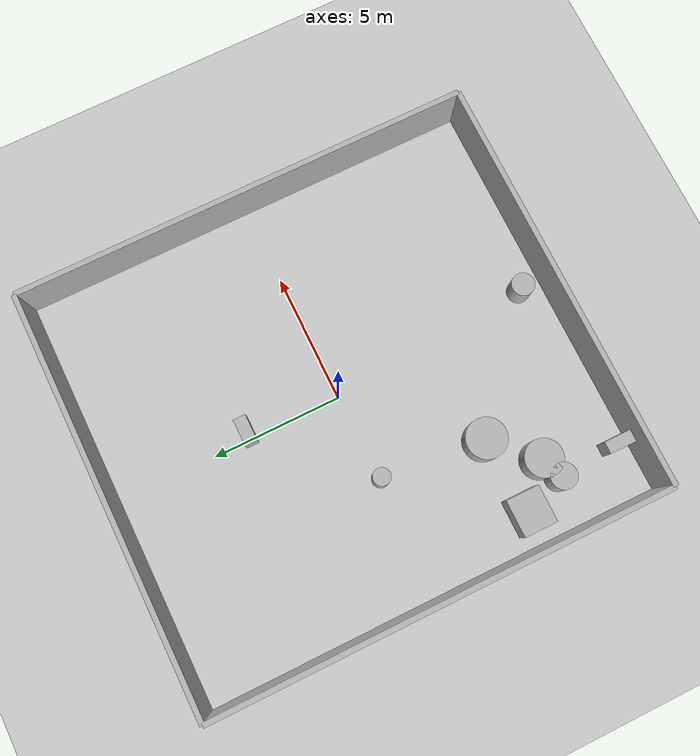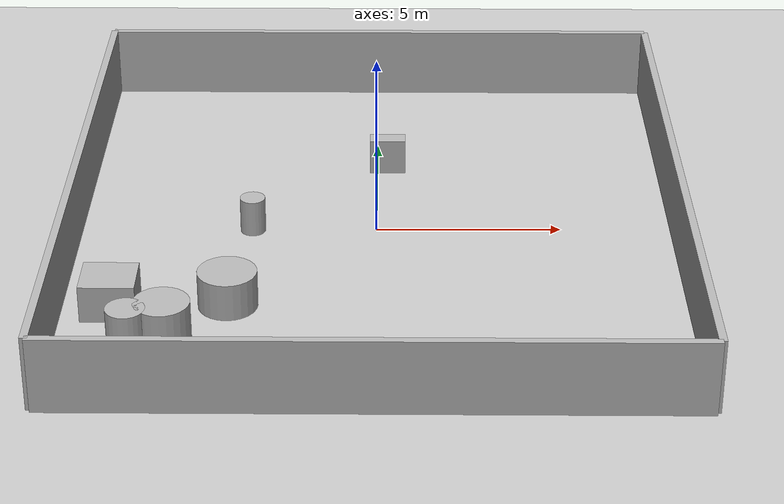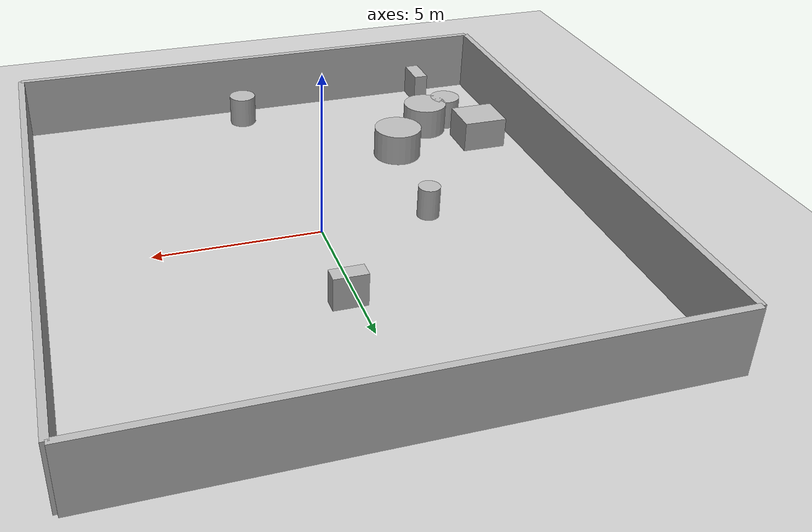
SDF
<?xml version="1.0"?>
<sdf version="1.6">
  <world name="env_27">

    <include><uri>model://ground_plane</uri></include>
    <include><uri>model://sun</uri></include>

    <!-- WALLS -->
    <model name="wall_north"><static>true</static><pose>0 8.845807577676442 1 0 0 0</pose>
      <link name="link"><collision name="collision">
        <geometry><box><size>16.138119352759645 0.2 2</size></box></geometry>
      </collision><visual name="visual">
        <geometry><box><size>16.138119352759645 0.2 2</size></box></geometry>
      </visual></link>
    </model>

    <model name="wall_south"><static>true</static><pose>0 -8.845807577676442 1 0 0 0</pose>
      <link name="link"><collision name="collision">
        <geometry><box><size>16.138119352759645 0.2 2</size></box></geometry>
      </collision><visual name="visual">
        <geometry><box><size>16.138119352759645 0.2 2</size></box></geometry>
      </visual></link>
    </model>

    <model name="wall_east"><static>true</static><pose>8.069059676379823 0 1 0 0 1.57</pose>
      <link name="link"><collision name="collision">
        <geometry><box><size>17.691615155352885 0.2 2</size></box></geometry>
      </collision><visual name="visual">
        <geometry><box><size>17.691615155352885 0.2 2</size></box></geometry>
      </visual></link>
    </model>

    <model name="wall_west"><static>true</static><pose>-8.069059676379823 0 1 0 0 1.57</pose>
      <link name="link"><collision name="collision">
        <geometry><box><size>17.691615155352885 0.2 2</size></box></geometry>
      </collision><visual name="visual">
        <geometry><box><size>17.691615155352885 0.2 2</size></box></geometry>
      </visual></link>
    </model>

    <!-- SENSOR -->

    <model name="lidar_sensor">
      <static>true</static>
      <pose>-6.746635146289049 2.9169019839385584 0.4 0 0 0</pose>
      <link name="link">
        <sensor name="lidar" type="ray">
          <pose>0 0 0 0 0 0</pose>
          <visualize>true</visualize>
          <always_on>true</always_on>
          <update_rate>10</update_rate>
          <ray>
            <scan><horizontal>
              <samples>180</samples>
              <resolution>1</resolution>
              <min_angle>-3.14159</min_angle>
              <max_angle>3.14159</max_angle>
            </horizontal></scan>
            <range><min>0.15</min><max>20.0</max><resolution>0.01</resolution></range>
          </ray>
          <plugin name="lidar_plugin" filename="liblidar_plugin.so"/>
        </sensor>
      </link>
    </model>

    <!-- OBSTACLES -->

    <model name="obstacle_0">
      <static>true</static>
      <pose>-3.3445661319123925 -0.06897953728970663 0.5 0 0 0</pose>
      <link name="link">
        <collision name="collision">
          <geometry><cylinder><radius>0.34</radius><length>1.0</length></cylinder></geometry>
        </collision>
        <visual name="visual">
          <geometry><cylinder><radius>0.34</radius><length>1.0</length></cylinder></geometry>
        </visual>
      </link>
    </model>

    <model name="obstacle_1">
      <static>true</static>
      <pose>0.28763918736163063 3.5640579252237323 0.5 0 0 0</pose>
      <link name="link">
        <collision name="collision">
          <geometry><box><size>1.0 0.48 1.0</size></box></geometry>
        </collision>
        <visual name="visual">
          <geometry><box><size>1.0 0.48 1.0</size></box></geometry>
        </visual>
      </link>
    </model>

    <model name="obstacle_2">
      <static>true</static>
      <pose>-6.72527190327505 -4.250638701789756 0.5 0 0 0</pose>
      <link name="link">
        <collision name="collision">
          <geometry><box><size>1.43 1.29 1.0</size></box></geometry>
        </collision>
        <visual name="visual">
          <geometry><box><size>1.43 1.29 1.0</size></box></geometry>
        </visual>
      </link>
    </model>

    <model name="obstacle_3">
      <static>true</static>
      <pose>-3.751884487221621 -4.028006430602406 0.5 0 0 0</pose>
      <link name="link">
        <collision name="collision">
          <geometry><cylinder><radius>0.77</radius><length>1.0</length></cylinder></geometry>
        </collision>
        <visual name="visual">
          <geometry><cylinder><radius>0.77</radius><length>1.0</length></cylinder></geometry>
        </visual>
      </link>
    </model>

    <model name="obstacle_4">
      <static>true</static>
      <pose>-5.944384078472893 -8.294089539381613 0.5 0 0 0</pose>
      <link name="link">
        <collision name="collision">
          <geometry><box><size>0.46 1.17 1.0</size></box></geometry>
        </collision>
        <visual name="visual">
          <geometry><box><size>0.46 1.17 1.0</size></box></geometry>
        </visual>
      </link>
    </model>

    <model name="obstacle_5">
      <static>true</static>
      <pose>-6.133602221208405 -5.85514885941182 0.5 0 0 0</pose>
      <link name="link">
        <collision name="collision">
          <geometry><cylinder><radius>0.5</radius><length>1.0</length></cylinder></geometry>
        </collision>
        <visual name="visual">
          <geometry><cylinder><radius>0.5</radius><length>1.0</length></cylinder></geometry>
        </visual>
      </link>
    </model>

    <model name="obstacle_6">
      <static>true</static>
      <pose>0.6902857106499241 -7.86695240139719 0.5 0 0 0</pose>
      <link name="link">
        <collision name="collision">
          <geometry><cylinder><radius>0.44</radius><length>1.0</length></cylinder></geometry>
        </collision>
        <visual name="visual">
          <geometry><cylinder><radius>0.44</radius><length>1.0</length></cylinder></geometry>
        </visual>
      </link>
    </model>

    <model name="obstacle_7">
      <static>true</static>
      <pose>-5.268941912488784 -5.531181497884614 0.5 0 0 0</pose>
      <link name="link">
        <collision name="collision">
          <geometry><cylinder><radius>0.72</radius><length>1.0</length></cylinder></geometry>
        </collision>
        <visual name="visual">
          <geometry><cylinder><radius>0.72</radius><length>1.0</length></cylinder></geometry>
        </visual>
      </link>
    </model>

  </world>
</sdf>
